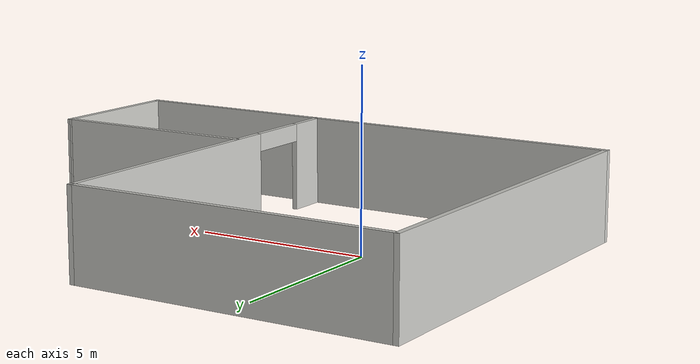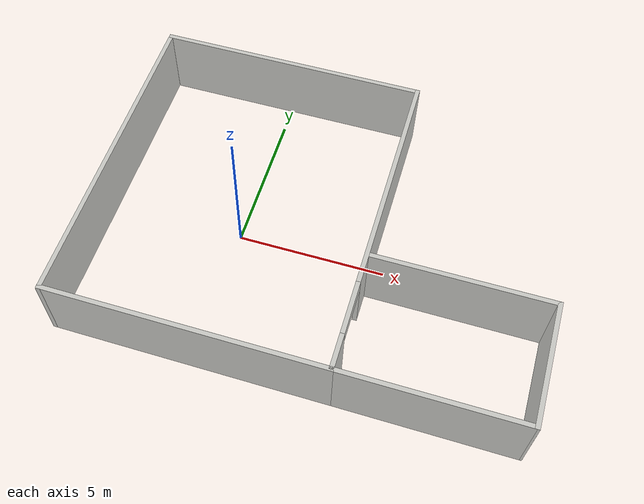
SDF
<?xml version='1.0'?>
<sdf version='1.6'>
  <model name='trybuild'>
    <pose frame=''>2.93003 0.561045 0 0 -0 0</pose>
    <link name='Wall_10'>
      <collision name='Wall_10_Collision'>
        <geometry>
          <box>
            <size>6 0.15 2.5</size>
          </box>
        </geometry>
        <pose frame=''>0 0 1.25 0 -0 0</pose>
      </collision>
      <visual name='Wall_10_Visual'>
        <pose frame=''>0 0 1.25 0 -0 0</pose>
        <geometry>
          <box>
            <size>6 0.15 2.5</size>
          </box>
        </geometry>
        <material>
          <script>
            <uri>file://media/materials/scripts/gazebo.material</uri>
            <name>Gazebo/CeilingTiled</name>
          </script>
          <ambient>0.760784 0.662745 0.627451 1</ambient>
        </material>
        <meta>
          <layer>0</layer>
        </meta>
      </visual>
      <pose frame=''>4.57697 -1.44503 0 0 -0 0</pose>
    </link>
    <link name='Wall_13'>
      <collision name='Wall_13_Collision'>
        <geometry>
          <box>
            <size>6 0.15 2.5</size>
          </box>
        </geometry>
        <pose frame=''>0 0 1.25 0 -0 0</pose>
      </collision>
      <visual name='Wall_13_Visual'>
        <pose frame=''>0 0 1.25 0 -0 0</pose>
        <geometry>
          <box>
            <size>6 0.15 2.5</size>
          </box>
        </geometry>
        <material>
          <script>
            <uri>file://media/materials/scripts/gazebo.material</uri>
            <name>Gazebo/CeilingTiled</name>
          </script>
          <ambient>0.760784 0.662745 0.627451 1</ambient>
        </material>
        <meta>
          <layer>0</layer>
        </meta>
      </visual>
      <pose frame=''>4.52201 -5.42449 0 0 -0 0</pose>
    </link>
    <link name='Wall_16'>
      <collision name='Wall_16_Collision'>
        <geometry>
          <box>
            <size>4.12983 0.15 2.5</size>
          </box>
        </geometry>
        <pose frame=''>0 0 1.25 0 -0 0</pose>
      </collision>
      <visual name='Wall_16_Visual'>
        <pose frame=''>0 0 1.25 0 -0 0</pose>
        <geometry>
          <box>
            <size>4.12983 0.15 2.5</size>
          </box>
        </geometry>
        <material>
          <script>
            <uri>file://media/materials/scripts/gazebo.material</uri>
            <name>Gazebo/CeilingTiled</name>
          </script>
          <ambient>0.760784 0.662745 0.627451 1</ambient>
        </material>
        <meta>
          <layer>0</layer>
        </meta>
      </visual>
      <pose frame=''>7.47449 -3.43476 0 0 0 -1.58461</pose>
    </link>
    <link name='Wall_2'>
      <collision name='Wall_2_Collision'>
        <geometry>
          <box>
            <size>9.25 0.15 2.5</size>
          </box>
        </geometry>
        <pose frame=''>0 0 1.25 0 -0 0</pose>
      </collision>
      <visual name='Wall_2_Visual'>
        <pose frame=''>0 0 1.25 0 -0 0</pose>
        <geometry>
          <box>
            <size>9.25 0.15 2.5</size>
          </box>
        </geometry>
        <material>
          <script>
            <uri>file://media/materials/scripts/gazebo.material</uri>
            <name>Gazebo/CeilingTiled</name>
          </script>
          <ambient>0.760784 0.662745 0.627451 1</ambient>
        </material>
        <meta>
          <layer>0</layer>
        </meta>
      </visual>
      <pose frame=''>-2.95299 -5.42449 0 0 -0 3.14159</pose>
    </link>
    <link name='Wall_5'>
      <collision name='Wall_5_Collision'>
        <geometry>
          <box>
            <size>11 0.15 2.5</size>
          </box>
        </geometry>
        <pose frame=''>0 0 1.25 0 -0 0</pose>
      </collision>
      <visual name='Wall_5_Visual'>
        <pose frame=''>0 0 1.25 0 -0 0</pose>
        <geometry>
          <box>
            <size>11 0.15 2.5</size>
          </box>
        </geometry>
        <material>
          <script>
            <uri>file://media/materials/scripts/gazebo.material</uri>
            <name>Gazebo/CeilingTiled</name>
          </script>
          <ambient>0.760784 0.662745 0.627451 1</ambient>
        </material>
        <meta>
          <layer>0</layer>
        </meta>
      </visual>
      <pose frame=''>-7.50299 0.000514 0 0 -0 1.5708</pose>
    </link>
    <link name='Wall_6'>
      <collision name='Wall_6_Collision'>
        <geometry>
          <box>
            <size>9.25 0.15 2.5</size>
          </box>
        </geometry>
        <pose frame=''>0 0 1.25 0 -0 0</pose>
      </collision>
      <visual name='Wall_6_Visual'>
        <pose frame=''>0 0 1.25 0 -0 0</pose>
        <geometry>
          <box>
            <size>9.25 0.15 2.5</size>
          </box>
        </geometry>
        <material>
          <script>
            <uri>file://media/materials/scripts/gazebo.material</uri>
            <name>Gazebo/CeilingTiled</name>
          </script>
          <ambient>0.760784 0.662745 0.627451 1</ambient>
        </material>
        <meta>
          <layer>0</layer>
        </meta>
      </visual>
      <pose frame=''>-2.95299 5.42551 0 0 -0 0</pose>
    </link>
    <link name='Wall_8'>
      <pose frame=''>1.59701 0.000514 0 0 0 -1.5708</pose>
      <visual name='Wall_8_Visual_0'>
        <pose frame=''>-1.52047 0 1.25 0 -0 0</pose>
        <geometry>
          <box>
            <size>7.95906 0.15 2.5</size>
          </box>
        </geometry>
        <material>
          <script>
            <uri>file://media/materials/scripts/gazebo.material</uri>
            <name>Gazebo/CeilingTiled</name>
          </script>
          <ambient>0.760784 0.662745 0.627451 1</ambient>
        </material>
        <meta>
          <layer>0</layer>
        </meta>
      </visual>
      <collision name='Wall_8_Collision_0'>
        <geometry>
          <box>
            <size>7.95906 0.15 2.5</size>
          </box>
        </geometry>
        <pose frame=''>-1.52047 0 1.25 0 -0 0</pose>
      </collision>
      <visual name='Wall_8_Visual_1'>
        <pose frame=''>4.87941 0 1.25 0 -0 0</pose>
        <geometry>
          <box>
            <size>1.24118 0.15 2.5</size>
          </box>
        </geometry>
        <material>
          <script>
            <uri>file://media/materials/scripts/gazebo.material</uri>
            <name>Gazebo/CeilingTiled</name>
          </script>
          <ambient>0.760784 0.662745 0.627451 1</ambient>
        </material>
        <meta>
          <layer>0</layer>
        </meta>
      </visual>
      <collision name='Wall_8_Collision_1'>
        <geometry>
          <box>
            <size>1.24118 0.15 2.5</size>
          </box>
        </geometry>
        <pose frame=''>4.87941 0 1.25 0 -0 0</pose>
      </collision>
      <visual name='Wall_8_Visual_2'>
        <pose frame=''>3.35894 0 2.25 0 -0 0</pose>
        <geometry>
          <box>
            <size>1.79975 0.15 0.5</size>
          </box>
        </geometry>
        <material>
          <script>
            <uri>file://media/materials/scripts/gazebo.material</uri>
            <name>Gazebo/CeilingTiled</name>
          </script>
          <ambient>0.760784 0.662745 0.627451 1</ambient>
        </material>
        <meta>
          <layer>0</layer>
        </meta>
      </visual>
      <collision name='Wall_8_Collision_2'>
        <geometry>
          <box>
            <size>1.79975 0.15 0.5</size>
          </box>
        </geometry>
        <pose frame=''>3.35894 0 2.25 0 -0 0</pose>
      </collision>
    </link>
    <static>1</static>
  </model>
</sdf>
